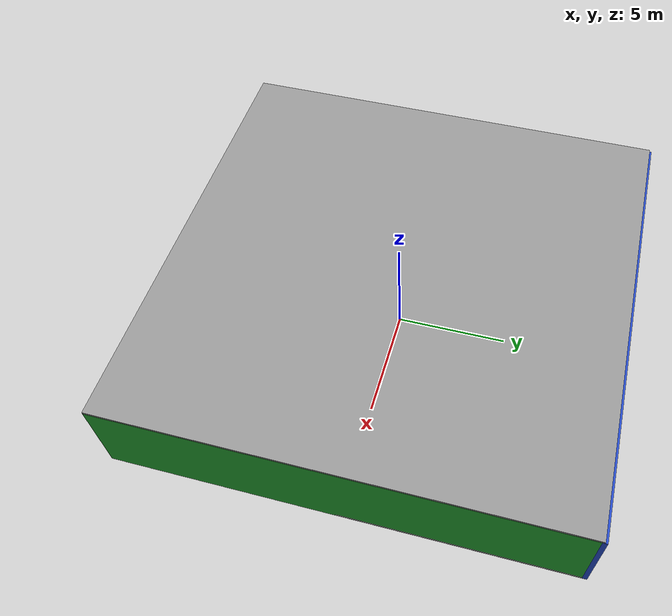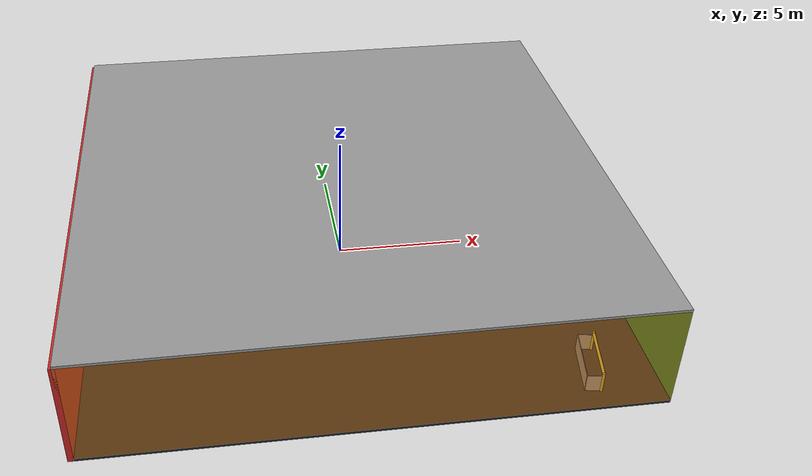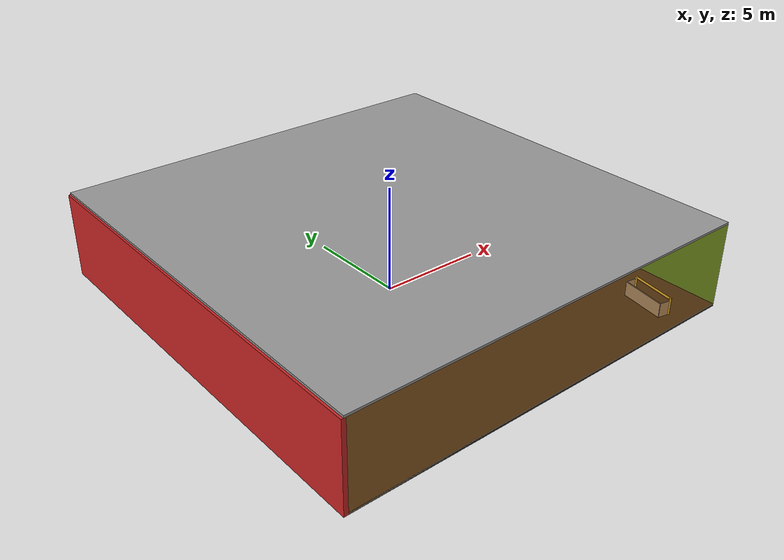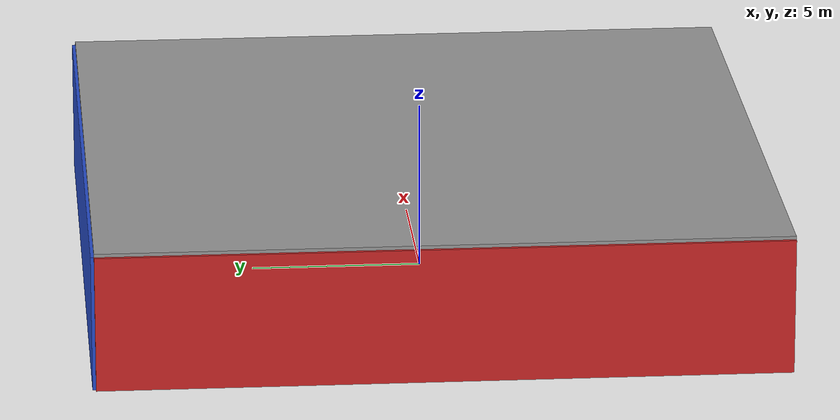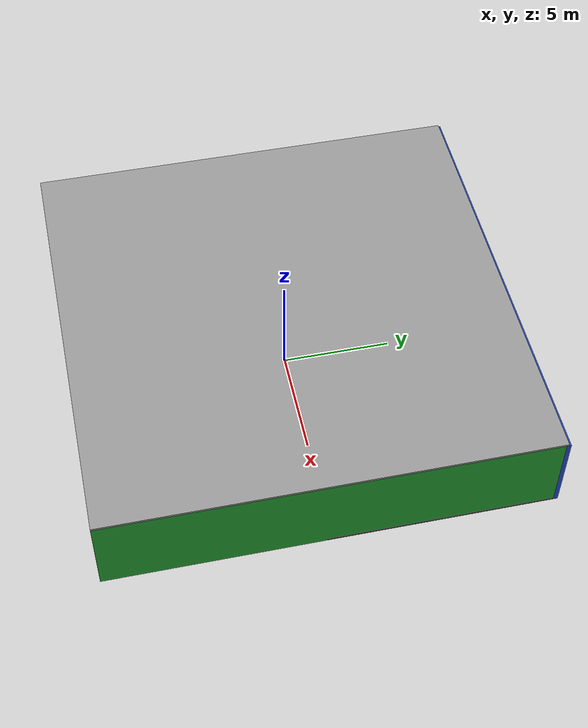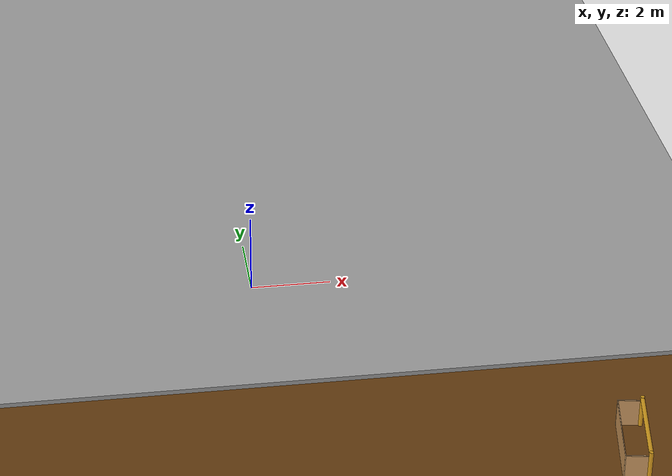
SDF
<sdf version="1.4">
 <world name="default">
  <physics type="ode">
   <max_step_size>0.001</max_step_size>
   <real_time_factor>1</real_time_factor>
   <real_time_update_rate>1000</real_time_update_rate>
   <gravity>0 0 -9.8</gravity>
  </physics>
  <scene><ambient>0.4 0.4 0.4 1</ambient><background>0.7 0.7 0.7 1</background><shadows>1</shadows></scene>
  <model name="Surrounding">
   <static>1</static>
   <link name="Ceiling">
    <collision name="Ceiling_Collision"><geometry><box><size>20 20 0.1</size></box></geometry></collision>
    <visual name="Ceiling_Visual">
     <geometry><box><size>20 20 0.1</size></box></geometry>
     <material>
      <script><uri>file://media/materials/scripts/gazebo.material</uri><name>Gazebo/GreyGradientSky</name></script>
     </material>
    </visual>
    <pose>0 0 4.05 0 0 0</pose>
   </link>
   <link name="Wall_South">
    <collision name="Wall_South_Collision">
     <geometry><box><size>20 0 4</size></box></geometry>
     <pose>0 0 2 0 -0 0</pose>
    </collision>
    <visual name="Wall_South_Visual">
     <pose>0 0 2 0 -0 0</pose>
     <geometry><box><size>20 0 4</size></box></geometry>
     <material>
      <script>
       <uri>file://media/materials/scripts/gazebo.material</uri>
       <name>Gazebo/OrangeTransparent</name>
      </script>
     </material>
    </visual>
    <velocity_decay><linear>0</linear><angular>0</angular></velocity_decay>
    <pose>0 -10 0 0 -0 0</pose>
   </link>
   <link name="Wall_East">
    <collision name="Wall_21_Collision">
     <geometry><box><size>20 0 4</size></box></geometry>
     <pose>0 0 2 0 -0 0</pose>
    </collision>
    <visual name="Wall_21_Visual">
     <pose>0 0 2 0 -0 0</pose>
     <geometry><box><size>20 0 4</size></box></geometry>
     <material>
      <script><uri>file://media/materials/scripts/gazebo.material</uri><name>Gazebo/GreenGlow</name></script>
     </material>
    </visual>
    <velocity_decay><linear>0</linear><angular>0</angular></velocity_decay>
    <pose>10 0 0 0 -0 1.5708</pose>
   </link>
   <link name="Wall_North">
    <collision name="Wall_22_Collision">
     <geometry><box><size>20 0.2 4</size></box></geometry>
     <pose>0 0 2 0 -0 0</pose>
    </collision>
    <visual name="Wall_22_Visual">
     <pose>0 0 2 0 -0 0</pose>
     <geometry><box><size>20 0.2 4</size></box></geometry>
     <material>
      <script><uri>file://media/materials/scripts/gazebo.material</uri><name>Gazebo/BlueGlow</name></script>
     </material>
    </visual>
    <velocity_decay><linear>0</linear><angular>0</angular></velocity_decay>
    <pose>0 10 0 0 -0 0</pose>
   </link>
   <link name="Wall_West">
    <collision name="Wall_23_Collision">
     <geometry><box><size>20 0.2 4</size></box></geometry>
     <pose>0 0 2 0 -0 0</pose>
    </collision>
    <visual name="Wall_23_Visual">
     <pose>0 0 2 0 -0 0</pose>
     <geometry><box><size>20 0.2 4</size></box></geometry>
     <material>
      <script><uri>file://media/materials/scripts/gazebo.material</uri><name>Gazebo/RedGlow</name></script>
     </material>
    </visual>
    <velocity_decay><linear>0</linear><angular>0</angular></velocity_decay>
    <pose>-10 0 0 0 0 -1.5708</pose>
   </link>
   <link name="Ground_link">
    <collision name="collision">
     <pose>0 0 .05 0 -0 0</pose>
     <geometry><box><size>20 20 0.1</size></box></geometry>
    </collision>
    <visual name="visual">
     <pose>0 0 .05 0 -0 0</pose>
     <geometry><box><size>20 20 0.1</size></box></geometry>
     <material>
      <script><uri>file://media/materials/scripts/gazebo.material</uri><name>Gazebo/FlatBlack</name></script>
     </material>
    </visual>
   </link>
   <static>1</static>
  </model>
  <spherical_coordinates>
   <surface_model>EARTH_WGS84</surface_model>
   <latitude_deg>0</latitude_deg>
   <longitude_deg>0</longitude_deg>
   <elevation>0</elevation>
   <heading_deg>0</heading_deg>
  </spherical_coordinates>
  <light name="lightball_0" type="diffuse">
   <diffuse>0.8 0.8 0.8 1</diffuse>
   <specular>0.2 0.2 0.2 1</specular>
   <attenuation>
    <range>100</range>
    <constant>0.7</constant>
    <linear>0.01</linear>
    <quadratic>0.001</quadratic>
   </attenuation>
   <direction>-0.5 0.1 -0.9</direction>
   <pose>-8.12930089226 8.50490364887 2.57226168032 0 0 0</pose>
  </light>
  <light name="lightball_1" type="diffuse">
   <diffuse>0.8 0.8 0.8 1</diffuse>
   <specular>0.2 0.2 0.2 1</specular>
   <attenuation>
    <range>100</range>
    <constant>0.7</constant>
    <linear>0.01</linear>
    <quadratic>0.001</quadratic>
   </attenuation>
   <direction>-0.5 0.1 -0.9</direction>
   <pose>-3.21009459471 8.61498270767 2.82496996739 0 0 0</pose>
  </light>
  <light name="lightball_2" type="diffuse">
   <diffuse>0.8 0.8 0.8 1</diffuse>
   <specular>0.2 0.2 0.2 1</specular>
   <attenuation>
    <range>100</range>
    <constant>0.7</constant>
    <linear>0.01</linear>
    <quadratic>0.001</quadratic>
   </attenuation>
   <direction>-0.5 0.1 -0.9</direction>
   <pose>-2.47228593386 9.05536391641 0.738360505717 0 0 0</pose>
  </light>
  <light name="lightball_3" type="diffuse">
   <diffuse>0.8 0.8 0.8 1</diffuse>
   <specular>0.2 0.2 0.2 1</specular>
   <attenuation>
    <range>100</range>
    <constant>0.7</constant>
    <linear>0.01</linear>
    <quadratic>0.001</quadratic>
   </attenuation>
   <direction>-0.5 0.1 -0.9</direction>
   <pose>8.75889676392 -7.87703191033 2.93736426167 0 0 0</pose>
  </light>
  <light name="lightball_4" type="diffuse">
   <diffuse>0.8 0.8 0.8 1</diffuse>
   <specular>0.2 0.2 0.2 1</specular>
   <attenuation>
    <range>100</range>
    <constant>0.7</constant>
    <linear>0.01</linear>
    <quadratic>0.001</quadratic>
   </attenuation>
   <direction>-0.5 0.1 -0.9</direction>
   <pose>-8.61422632974 -6.11955883573 3.81762609388 0 0 0</pose>
  </light>
  <light name="lightball_5" type="diffuse">
   <diffuse>0.8 0.8 0.8 1</diffuse>
   <specular>0.2 0.2 0.2 1</specular>
   <attenuation>
    <range>100</range>
    <constant>0.7</constant>
    <linear>0.01</linear>
    <quadratic>0.001</quadratic>
   </attenuation>
   <direction>-0.5 0.1 -0.9</direction>
   <pose>-5.92218779106 8.49591545802 1.72333027669 0 0 0</pose>
  </light>
  <include>
   <uri>model://robocup_3Dsim_goal</uri>
   <pose>1.92771682233 -1.03582719859 0 0 0 0.645408310659</pose>
  </include>
  <include>
   <uri>model://textured_shapes</uri>
   <pose>1.98702941057 1.43550966212 0 0 0 2.64468829447</pose>
  </include>
  <include>
   <uri>model://construction_cone</uri>
   <pose>3.94281363775 -1.59812148942 0 0 0 2.52430300462</pose>
  </include>
  <include>
   <uri>model://robocup_3Dsim_goal</uri>
   <pose>7.98179787119 -8.21921834677 0 0 0 2.97176334525</pose>
  </include>
  <include>
   <uri>model://textured_shapes</uri>
   <pose>7.75512169614 0.9239325833 0 0 0 3.13128367727</pose>
  </include>
 </world>
</sdf>

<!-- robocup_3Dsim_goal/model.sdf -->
<sdf version="1.5">
  <model name="robocup_3d_goal">
    <static>true</static>
    <link name="left_post">
      <pose>0 1.05 0.45 0 0 0</pose>
      <collision name="collision">
        <geometry>
          <cylinder>
            <radius>0.05</radius>
            <length>0.9</length>
          </cylinder>
        </geometry>
      </collision>
      <visual name="visual">
        <geometry>
          <cylinder>
            <radius>0.05</radius>
            <length>0.9</length>
          </cylinder>
        </geometry>
        <material>
          <script>
            <uri>file://media/materials/scripts/gazebo.material</uri>
            <name>Gazebo/ZincYellow</name>
          </script>
        </material>
      </visual>
    </link>
    <link name="left_support_horiz_lower">
      <pose>0.30 1.05 0.01 0 0 0</pose>
      <collision name="collision">
        <geometry>
          <box>
            <size>0.50 0.02 0.02</size>
          </box>
        </geometry>
      </collision>
      <visual name="visual">
        <geometry>
          <box>
            <size>0.50 0.02 0.02</size>
          </box>
        </geometry>
        <material>
          <script>
            <uri>file://media/materials/scripts/gazebo.material</uri>
            <name>Gazebo/White</name>
          </script>
        </material>
      </visual>
    </link>
    <link name="left_support_horiz_upper">
      <pose>0.30 1.05 0.79 0 0 0</pose>
      <collision name="collision">
        <geometry>
          <box>
            <size>0.50 0.02 0.02</size>
          </box>
        </geometry>
      </collision>
      <visual name="visual">
        <geometry>
          <box>
            <size>0.50 0.02 0.02</size>
          </box>
        </geometry>
        <material>
          <script>
            <uri>file://media/materials/scripts/gazebo.material</uri>
            <name>Gazebo/White</name>
          </script>
        </material>
      </visual>
    </link>
    <link name="left_support_vertical">
      <pose>0.56 1.05 0.4 0 1.5708 0</pose>
      <collision name="collision">
        <geometry>
          <box>
            <size>0.80 0.02 0.02</size>
          </box>
        </geometry>
      </collision>
      <visual name="visual">
        <geometry>
          <box>
            <size>0.80 0.02 0.02</size>
          </box>
        </geometry>
        <material>
          <script>
            <uri>file://media/materials/scripts/gazebo.material</uri>
            <name>Gazebo/White</name>
          </script>
        </material>
      </visual>
    </link>
    <link name="right_support_horiz_lower">
      <pose>0.30 -1.05 0.01 0 0 0</pose>
      <collision name="collision">
        <geometry>
          <box>
            <size>0.50 0.02 0.02</size>
          </box>
        </geometry>
      </collision>
      <visual name="visual">
        <geometry>
          <box>
            <size>0.50 0.02 0.02</size>
          </box>
        </geometry>
        <material>
          <script>
            <uri>file://media/materials/scripts/gazebo.material</uri>
            <name>Gazebo/White</name>
          </script>
        </material>
      </visual>
    </link>
    <link name="right_support_horiz_upper">
      <pose>0.30 -1.05 0.79 0 0 0</pose>
      <collision name="collision">
        <geometry>
          <box>
            <size>0.50 0.02 0.02</size>
          </box>
        </geometry>
      </collision>
      <visual name="visual">
        <geometry>
          <box>
            <size>0.50 0.02 0.02</size>
          </box>
        </geometry>
        <material>
          <script>
            <uri>file://media/materials/scripts/gazebo.material</uri>
            <name>Gazebo/White</name>
          </script>
        </material>
      </visual>
    </link>
    <link name="right_support_vertical">
      <pose>0.56 -1.05 0.4 0 1.5708 0</pose>
      <collision name="collision">
        <geometry>
          <box>
            <size>0.80 0.02 0.02</size>
          </box>
        </geometry>
      </collision>
      <visual name="visual">
        <geometry>
          <box>
            <size>0.80 0.02 0.02</size>
          </box>
        </geometry>
        <material>
          <script>
            <uri>file://media/materials/scripts/gazebo.material</uri>
            <name>Gazebo/White</name>
          </script>
        </material>
      </visual>
    </link>
    <link name="center_support_horiz_lower">
      <pose>0.56 0 0.01 0 1.5708 0</pose>
      <collision name="collision">
        <geometry>
          <box>
            <size>0.02 2.08 0.02</size>
          </box>
        </geometry>
      </collision>
      <visual name="visual">
        <geometry>
          <box>
            <size>0.02 2.08 0.02</size>
          </box>
        </geometry>
        <material>
          <script>
            <uri>file://media/materials/scripts/gazebo.material</uri>
            <name>Gazebo/White</name>
          </script>
        </material>
      </visual>
    </link>
    <link name="center_support_horiz_upper">
      <pose>0.56 0 0.79 0 1.5708 0</pose>
      <collision name="collision">
        <geometry>
          <box>
            <size>0.02 2.08 0.02</size>
          </box>
        </geometry>
      </collision>
      <visual name="visual">
        <geometry>
          <box>
            <size>0.02 2.08 0.02</size>
          </box>
        </geometry>
        <material>
          <script>
            <uri>file://media/materials/scripts/gazebo.material</uri>
            <name>Gazebo/White</name>
          </script>
        </material>
      </visual>
    </link>
    <link name="right_post">
      <pose>0 -1.05 0.45 0 0 0</pose>
      <collision name="collision">
        <geometry>
          <cylinder>
            <radius>0.05</radius>
            <length>0.9</length>
          </cylinder>
        </geometry>
      </collision>
      <visual name="visual">
        <geometry>
          <cylinder>
            <radius>0.05</radius>
            <length>0.9</length>
          </cylinder>
        </geometry>
        <material>
          <script>
            <uri>file://media/materials/scripts/gazebo.material</uri>
            <name>Gazebo/ZincYellow</name>
          </script>
        </material>
      </visual>
    </link>
    <link name="crossbar">
      <pose>0 0 0.85 1.57 1.57 0</pose>
      <collision name="collision">
        <geometry>
          <cylinder>
            <radius>0.05</radius>
            <length>2.0</length>
          </cylinder>
        </geometry>
      </collision>
      <visual name="visual">
        <geometry>
          <cylinder>
            <radius>0.05</radius>
            <length>2.0</length>
          </cylinder>
        </geometry>
        <material>
          <script>
            <uri>file://media/materials/scripts/gazebo.material</uri>
            <name>Gazebo/ZincYellow</name>
          </script>
        </material>
      </visual>
    </link>
    <link name="center_net">
      <pose>0.56 0 0.40 0 0 0</pose>
      <collision name="collision">
        <geometry>
          <box>
            <size>0.01 2.1 0.80</size>
          </box>
        </geometry>
      </collision>
      <visual name="visual">
        <geometry>
          <box>
            <size>0.01 2.1 0.80</size>
          </box>
        </geometry>
        <material>
          <script>
            <uri>model://../model_source/models/robocup09_spl_field/materials/scripts/</uri>
            <uri>model://../model_source/models/robocup09_spl_field/materials/textures/</uri>
            <name>RoboCup/Net</name>
          </script>
        </material>
      </visual>
    </link>
    <link name="left_net">
      <pose>0.30 1.05 0.40 0 0 0</pose>
      <collision name="collision">
        <geometry>
          <box>
            <size>0.50 0.01 0.76</size>
          </box>
        </geometry>
      </collision>
      <visual name="visual">
        <geometry>
          <box>
            <size>0.50 0.01 0.76</size>
          </box>
        </geometry>
        <material>
          <script>
            <uri>model://../model_source/models/robocup09_spl_field/materials/scripts/</uri>
            <uri>model://../model_source/models/robocup09_spl_field/materials/textures/</uri>
            <name>RoboCup/Net</name>
          </script>
        </material>
      </visual>
    </link>
    <link name="right_net">
      <pose>0.30 -1.05 0.40 0 0 0</pose>
      <collision name="collision">
        <geometry>
          <box>
            <size>0.50 0.01 0.76</size>
          </box>
        </geometry>
      </collision>
      <visual name="visual">
        <geometry>
          <box>
            <size>0.50 0.01 0.76</size>
          </box>
        </geometry>
        <material>
          <script>
            <uri>model://../model_source/models/robocup09_spl_field/materials/scripts/</uri>
            <uri>model://../model_source/models/robocup09_spl_field/materials/textures/</uri>
            <name>RoboCup/Net</name>
          </script>
        </material>
      </visual>
    </link>
  </model>
</sdf>

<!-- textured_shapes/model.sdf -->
<sdf version="1.6">
  <model name="textured_shapes">
    <pose>0 0 0.5 0 0 0</pose>
    <link name="box">
      <pose>0 -1.5 0 0 0 0</pose>
      <collision name="collision">
        <geometry>
          <box>
            <size>1 1 1</size>
          </box>
        </geometry>
      </collision>
      <visual name="visual">
        <geometry>
          <box>
            <size>1 1 1</size>
          </box>
        </geometry>
        <material>
          <script>
            <uri>model://../model_source/models/textured_shapes/materials/scripts</uri>
            <uri>model://../model_source/models/textured_shapes/materials/textures</uri>
            <name>TexturedShape/Squares</name>
          </script>
        </material>
      </visual>
    </link>
    <link name="sphere">
      <collision name="collision">
        <geometry>
          <sphere>
            <radius>0.5</radius>
          </sphere>
        </geometry>
      </collision>
      <visual name="visual">
        <geometry>
          <sphere>
            <radius>0.5</radius>
          </sphere>
        </geometry>
        <material>
          <script>
            <uri>model://../model_source/models/textured_shapes/materials/scripts</uri>
            <uri>model://../model_source/models/textured_shapes/materials/textures</uri>
            <name>TexturedShape/Squares</name>
          </script>
        </material>
      </visual>
    </link>
    <link name="cylinder">
      <pose>0 1.5 0 0 0 0</pose>
      <collision name="collision">
        <geometry>
          <cylinder>
            <radius>0.5</radius>
            <length>1</length>
          </cylinder>
        </geometry>
      </collision>
      <visual name="visual">
        <geometry>
          <cylinder>
            <radius>0.5</radius>
            <length>1</length>
          </cylinder>
        </geometry>
        <material>
          <script>
            <uri>model://../model_source/models/textured_shapes/materials/scripts</uri>
            <uri>model://../model_source/models/textured_shapes/materials/textures</uri>
            <name>TexturedShape/Squares</name>
          </script>
        </material>
      </visual>
    </link>
  </model>
</sdf>

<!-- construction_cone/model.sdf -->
<sdf version="1.5">
  <model name="Construction Cone">
    <link name="link">
      <collision name="collision">
        <geometry>
          <mesh>
            <scale>10 10 10</scale>
            <uri>file://isr-testbed/construction_cone/meshes/construction_cone.dae</uri>
          </mesh>
        </geometry>
      </collision>
      <visual name="visual">
        <geometry>
          <mesh>
            <scale>10 10 10</scale>
            <uri>file://isr-testbed/construction_cone/meshes/construction_cone.dae</uri>
          </mesh>
        </geometry>
      </visual>
    </link>
  </model>
</sdf>
